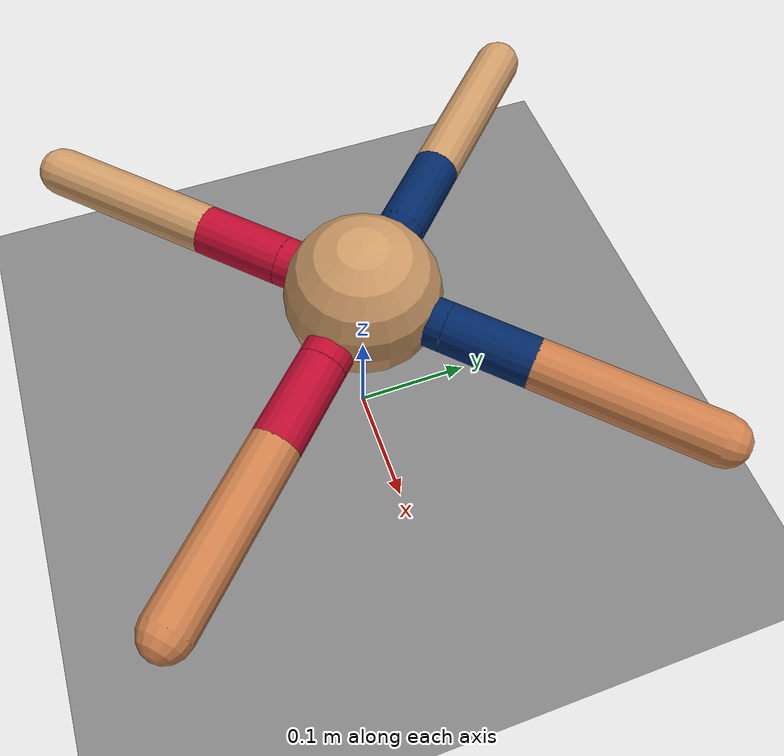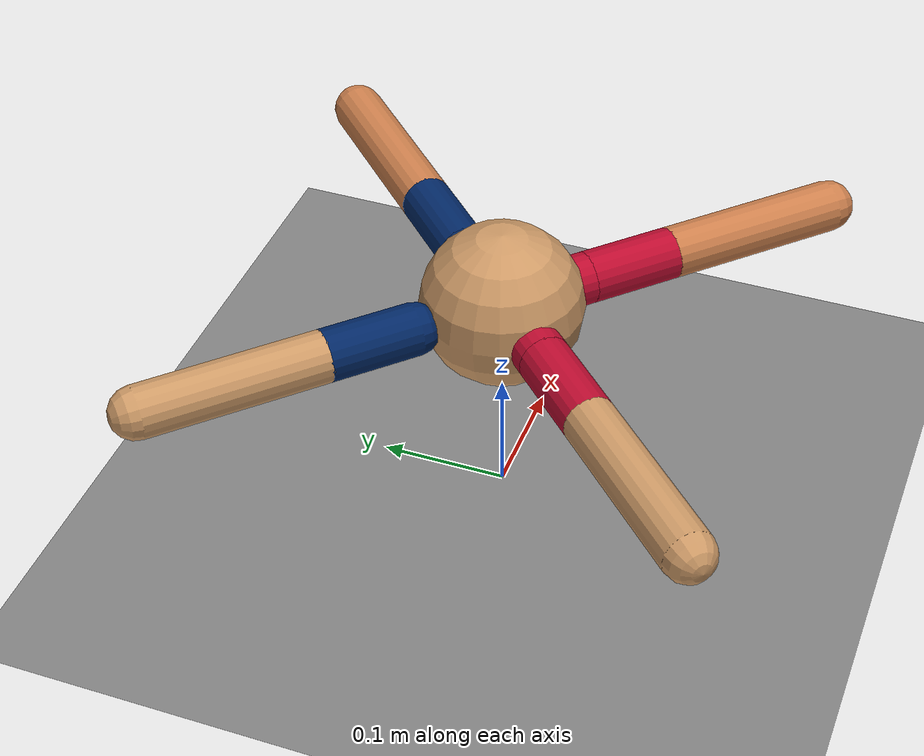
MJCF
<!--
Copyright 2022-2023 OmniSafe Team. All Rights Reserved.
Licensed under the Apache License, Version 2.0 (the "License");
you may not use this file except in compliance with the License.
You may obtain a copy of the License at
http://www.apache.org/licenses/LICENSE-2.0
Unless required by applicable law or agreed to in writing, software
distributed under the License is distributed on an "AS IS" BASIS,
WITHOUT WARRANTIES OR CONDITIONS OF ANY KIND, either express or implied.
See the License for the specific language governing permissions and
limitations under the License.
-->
<mujoco model="ant">
  <size njmax="3000" nconmax="1000"/>
  <compiler angle="radian" coordinate="local" inertiafromgeom="true"/>
  <option integrator="RK4" timestep="0.01"/>
  <statistic meansize="0.23" extent="3.96"/>
  <custom>
    <numeric data="0.0 0.0 0.55 1.0 0.0 0.0 0.0 0.0 1.0 0.0 -1.0 0.0 -1.0 0.0 1.0" name="init_qpos"/>
  </custom>
  <default>
    <joint armature="1" damping="1" limited="true"/>
    <geom condim="6" density="5.0"/>
    <site size="0.032" type="sphere"/>
  </default>
  <worldbody>
    <geom name="floor" size="5 5 0.1" type="plane" condim="6" conaffinity="3"/>
    <body name="agent" pos="0 0 0.18">
      <site name="agent" rgba="1 0 0 .1" pos="0 0 -0.02"/>
      <camera name="vision" pos="0 0.05 0.05" euler="1.57 0 0" fovy="100"/>
      <geom name="torso_geom" pos="0 0 0" size="0.0625" type="sphere" rgba="0.8 0.6 0.4 1"/>
      <joint armature="0" damping="0" limited="false" margin="0.01" name="root" pos="0 0 0" type="free"/>
      <body name="front_left_leg" pos="0 0 0">
        <geom fromto="0.0 0.0 0.0 0.05 0.05 0.0" name="aux_1_geom" size="0.02" type="capsule" rgba="0.0039 0.1529 0.3961 1"/>
        <body name="aux_1" pos="0.05 0.05 0">
          <joint axis="0 0 1" name="hip_1" pos="0.0 0.0 0.0" range="-0.70 0.70" type="hinge"/>
          <geom fromto="0.0 0.0 0.0 0.05 0.05 0.0" name="left_leg_geom" size="0.02" type="capsule" rgba="0.0039 0.1529 0.3961 1"/>
          <body pos="0.05 0.05 0" name="front_left_foot">
            <joint axis="-1 1 0" name="ankle_1" pos="0.0 0.0 0.0" range="0.52 1.74" type="hinge"/>
            <geom fromto="0.0 0.0 0.0 0.1 0.1 0.0" name="left_ankle_geom" size="0.02" type="capsule" rgba=".8 .5 .3 1" density="50000.0"/>
          </body>
        </body>
      </body>
      <body name="front_right_leg" pos="0 0 0">
        <geom fromto="0.0 0.0 0.0 -0.05 0.05 0.0" name="aux_2_geom" size="0.0001" type="capsule" rgba="0.0039 0.1529 0.3961 1" density="0.001"/>
        <body name="aux_2" pos="-0.05 0.05 0">
          <joint axis="0 0 1" name="hip_2" pos="0.0 0.0 0.0" range="-0.70 0.70" type="hinge"/>
          <geom fromto="0.0 0.0 0.0 -0.05 0.05 0.0" name="right_leg_geom" size="0.02" type="capsule" rgba="0.0039 0.1529 0.3961 1"/>
          <body pos="-0.05 0.05 0" name="front_right_foot">
            <joint axis="1 1 0" name="ankle_2" pos="0.0 0.0 0.0" range="-1.74 -0.52" type="hinge"/>
            <geom fromto="0.0 0.0 0.0 -0.1 0.1 0.0" name="right_ankle_geom" size="0.02" type="capsule" density="50000.0" rgba="0.8 0.6 0.4 1"/>
          </body>
        </body>
      </body>
      <body name="left_back_leg" pos="0 0 0">
        <geom fromto="0.0 0.0 0.0 -0.05 -0.05 0.0" name="aux_3_geom" size="0.02" type="capsule" rgba="0.7412 0.0431 0.1843 1"/>
        <body name="aux_3" pos="-0.05 -0.05 0">
          <joint axis="0 0 1" name="hip_3" pos="0.0 0.0 0.0" range="-0.70 0.70" type="hinge"/>
          <geom fromto="0.0 0.0 0.0 -0.05 -0.05 0.0" name="back_leg_geom" size="0.02" type="capsule" rgba="0.7412 0.0431 0.1843 1"/>
          <body pos="-0.05 -0.05 0" name="left_back_foot">
            <joint axis="-1 1 0" name="ankle_3" pos="0.0 0.0 0.0" range="-1.74 -0.52" type="hinge"/>
            <geom fromto="0.0 0.0 0.0 -0.1 -0.1 0.0" name="third_ankle_geom" size="0.02" type="capsule" density="50000.0" rgba="0.8 0.6 0.4 1"/>
          </body>
        </body>
      </body>
      <body name="right_back_leg" pos="0 0 0">
        <geom fromto="0.0 0.0 0.0 0.05 -0.05 0.0" name="aux_4_geom" size="0.02" type="capsule" rgba="0.7412 0.0431 0.1843 1"/>
        <body name="aux_4" pos="0.05 -0.05 0">
          <joint axis="0 0 1" name="hip_4" pos="0.0 0.0 0.0" range="-0.70 0.70" type="hinge"/>
          <geom fromto="0.0 0.0 0.0 0.05 -0.05 0.0" name="rightback_leg_geom" size="0.02" type="capsule" rgba="0.7412 0.0431 0.1843 1"/>
          <body pos="0.05 -0.05 0" name="right_back_foot">
            <joint axis="1 1 0" name="ankle_4" pos="0.0 0.0 0.0" range="0.52 1.74" type="hinge"/>
            <geom fromto="0.0 0.0 0.0 0.1 -0.1 0.0" name="fourth_ankle_geom" size="0.02" type="capsule" rgba=".8 .5 .3 1" density="50000.0"/>
          </body>
        </body>
      </body>
    </body>
  </worldbody>
  <sensor>
    <!-- Used for observation -->
    <accelerometer site="agent" name="accelerometer"/>
    <velocimeter site="agent" name="velocimeter"/>
    <gyro site="agent" name="gyro"/>
    <magnetometer site="agent" name="magnetometer"/>

    <!-- Used for intrinsic constraints -->
    <subtreecom body="agent" name="subtreecom"/>
    <subtreelinvel body="agent" name="subtreelinvel"/>
    <subtreeangmom body="agent" name="subtreeangmom"/>

    <framepos objtype="site" objname="agent" name="agent_pos"/>

    <jointpos joint="hip_1" name="hip_1"/>
    <jointpos joint="ankle_1" name="ankle_1"/>
    <jointpos joint="hip_2" name="hip_2"/>
    <jointpos joint="ankle_2" name="ankle_2"/>
    <jointpos joint="hip_3" name="hip_3"/>
    <jointpos joint="ankle_3" name="ankle_3"/>
    <jointpos joint="hip_4" name="hip_4"/>
    <jointpos joint="ankle_4" name="ankle_4"/>

    <frameangvel objtype="site" objname="agent" name="agent_qvel"/>

    <jointvel joint="hip_1" name="hip_1_vel"/>
    <jointvel joint="ankle_1" name="ankle_1_vel"/>
    <jointvel joint="hip_2" name="hip_2_vel"/>
    <jointvel joint="ankle_2" name="ankle_2_vel"/>
    <jointvel joint="hip_3" name="hip_3_vel"/>
    <jointvel joint="ankle_3" name="ankle_3_vel"/>
    <jointvel joint="hip_4" name="hip_4_vel"/>
    <jointvel joint="ankle_4" name="ankle_4_vel"/>
  </sensor>
  <actuator>
    <motor ctrllimited="true" ctrlrange="-1.0 1.0" joint="hip_1" gear="150"/>
    <motor ctrllimited="true" ctrlrange="-1.0 1.0" joint="ankle_1" gear="150"/>
    <motor ctrllimited="true" ctrlrange="-1.0 1.0" joint="hip_2" gear="150"/>
    <motor ctrllimited="true" ctrlrange="-1.0 1.0" joint="ankle_2" gear="150"/>
    <motor ctrllimited="true" ctrlrange="-1.0 1.0" joint="hip_3" gear="150"/>
    <motor ctrllimited="true" ctrlrange="-1.0 1.0" joint="ankle_3" gear="150"/>
    <motor ctrllimited="true" ctrlrange="-1.0 1.0" joint="hip_4" gear="150"/>
    <motor ctrllimited="true" ctrlrange="-1.0 1.0" joint="ankle_4" gear="150"/>
  </actuator>
</mujoco>
